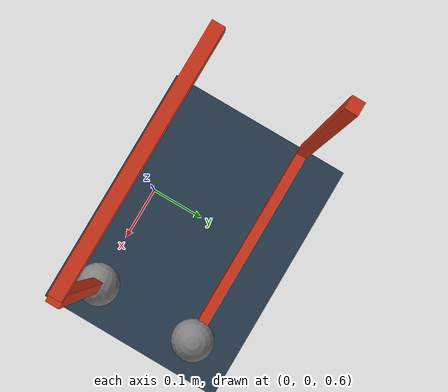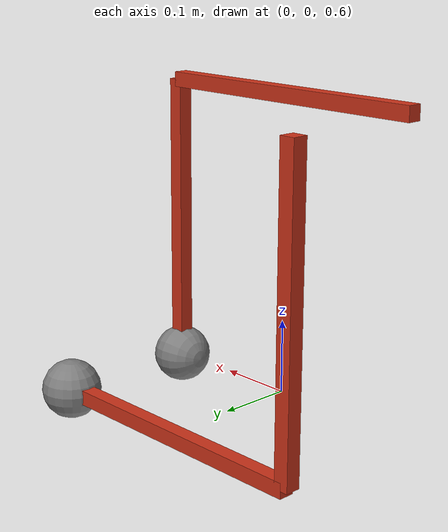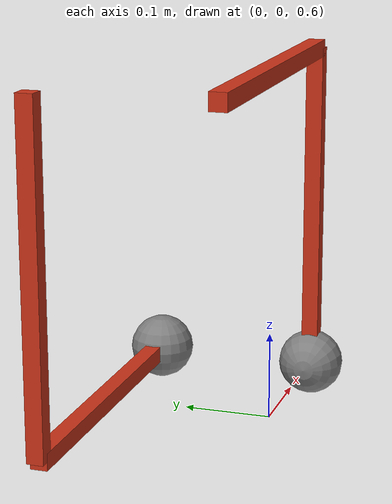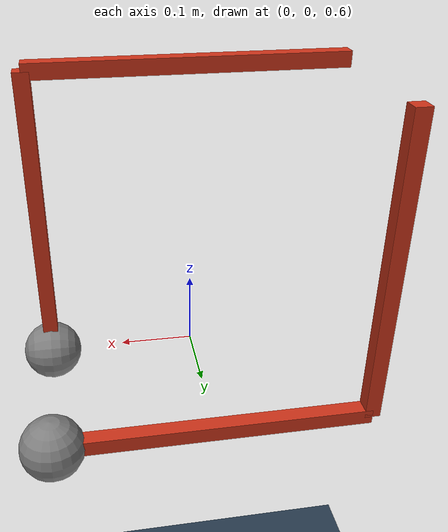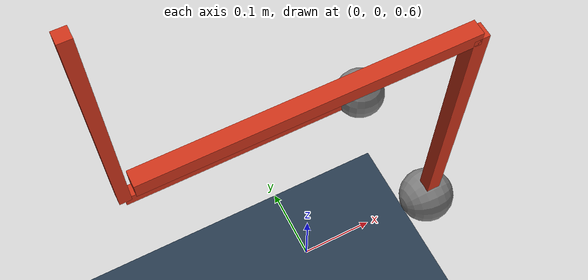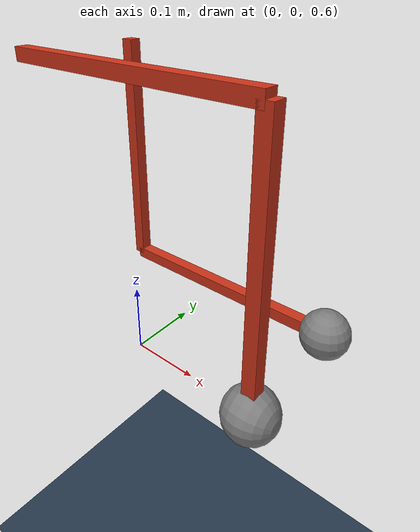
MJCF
<mujoco>
    <default>
        <joint type="hinge" frictionloss="0.1" damping='2' />
        <position ctrllimited="true" ctrlrange="-3.14 3.14" forcelimited="true" forcerange="-50 50" kp="10" />
    </default>

    <asset>
        <texture type="skybox" builtin="gradient" rgb1="0.3 0.5 0.7" rgb2="0 0 0" width="512" height="512" />
        <texture name="texplane" type="2d" builtin="checker" rgb1=".2 .3 .4" rgb2=".1 0.15 0.2" width="512" height="512" mark="cross" markrgb=".8 .8 .8" />

        <material name="matplane" reflectance="0.3" texture="texplane" texrepeat="1 1" texuniform="true" />
    </asset>

    <worldbody>
        <light directional="true" diffuse=".4 .4 .4" specular="0.1 0.1 0.1" pos="0 0 5.0" dir="0 0 -1" castshadow="false" />
        <light directional="true" diffuse=".6 .6 .6" specular="0.2 0.2 0.2" pos="0 0 4" dir="0 0 -1" />

        <geom name="ground" type="plane" size="0 0 1" pos="0 0 0" quat="1 0 0 0" material="matplane" condim="1" />

        <body name="b0" pos="0 0 1">
            <geom type="box" size="0.2 0.01 0.01" rgba=".8 .2 .1 1" />
            <joint name="j0" type="hinge" pos="-0.2 0 0" axis="0 1 0" />
            <body name="b2" pos="0.2 0 -0.2" euler="0 90 0">
                <geom type="box" size="0.2 0.01 0.01" rgba=".8 .2 .1 1" />
                <joint name="j2" type="hinge" pos="-0.2 0 0" axis="0 1 0" />
                <body name="b4">
                    <site name="site_bb0" pos="0.2 0 0" size="0.04" />
                </body>
            </body>
        </body>

        <body name="b1" pos="-0.2 0.2 0.8" >
            <geom type="box" size="0.01 0.01 0.2" rgba=".8 .2 .1 1" />
            <joint name="j1" type="hinge" pos="0 0 0.2" axis="0 1 0" />
            <body name="b3" pos="0.2 0 -0.2" euler="0 0 0">
                <geom type="box" size="0.2 0.01 0.01" rgba=".8 .2 .1 1" />
                <joint name="j3" type="hinge" pos="-0.2 0 0" axis="0 1 0" />
                <body name="b5">
                    <site name="site_bb1" pos="0.2 0 0" size="0.04" />
                </body>
            </body>
         </body>

    </worldbody>

    <contact>
    </contact>

    <equality>
                                                 <!-- 指定约束的锚点位置，即两个刚体连接的位置。 -->
        <connect name="c1" body1="b4" body2="b5" anchor="0.2 0 0" />

    </equality>

    <actuator>
        <position joint="j0" ctrllimited="true" ctrlrange="-3.14 3.14" />
        <position joint="j1" ctrllimited="true" ctrlrange="-3.14 3.14" />
    </actuator>
</mujoco>
